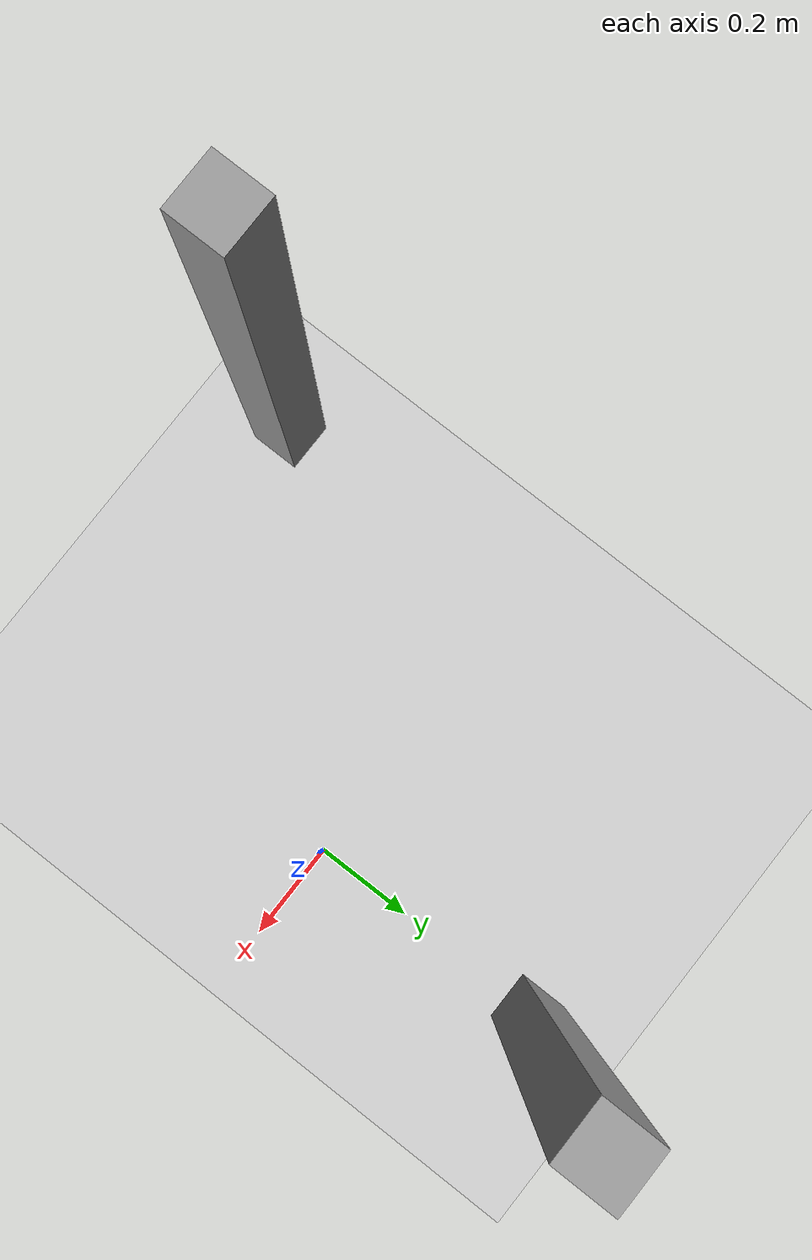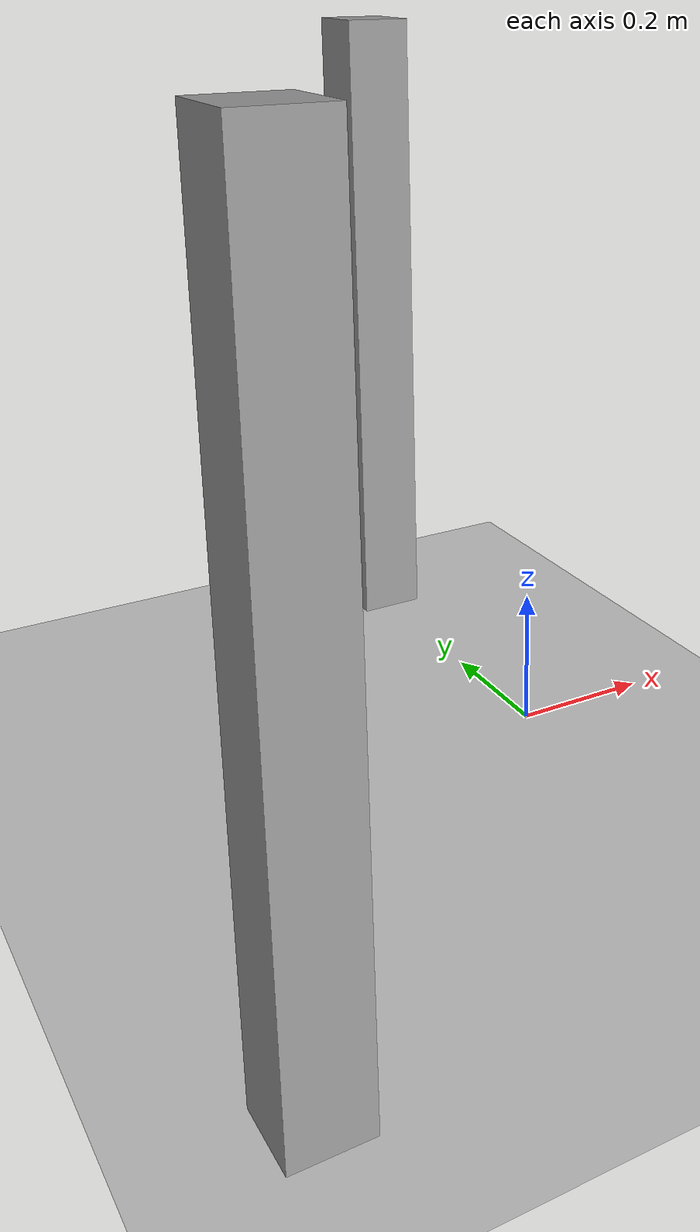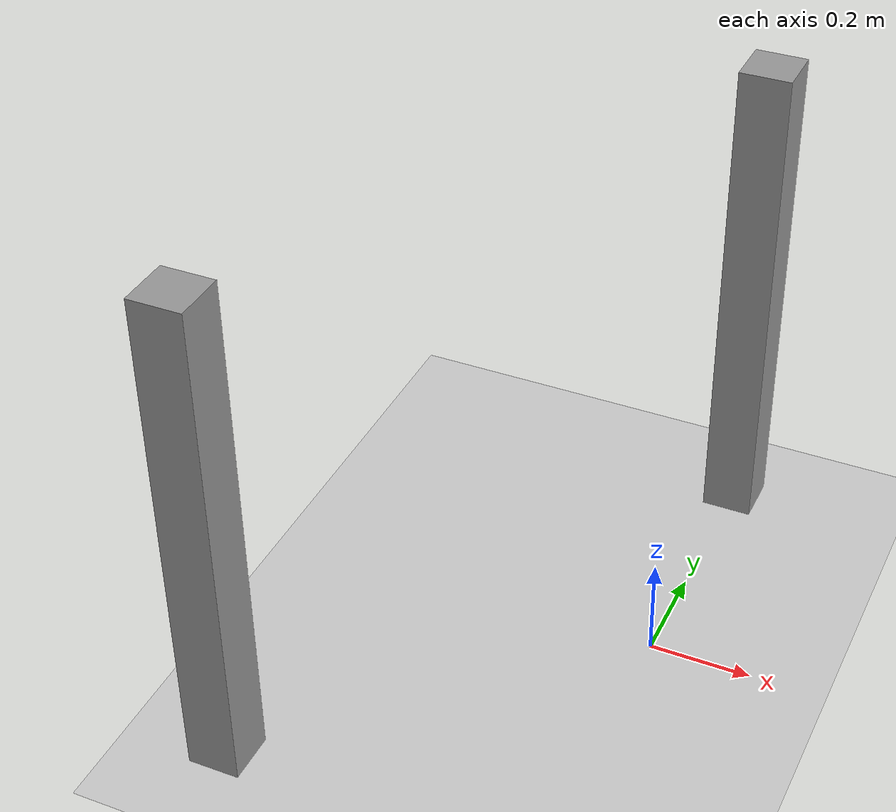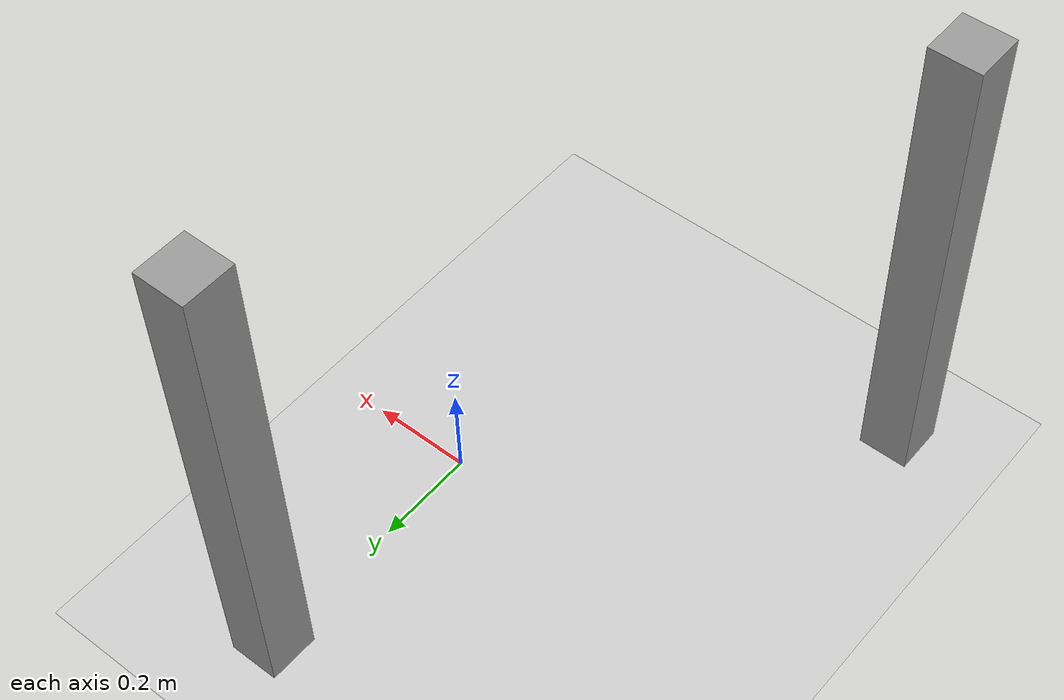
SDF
<sdf version="1.6">
 <world name="default">
  <light name="sun" type="directional">
   <pose>0 0 10 0 -0 0</pose>
   <diffuse>0.8 0.8 0.8 1</diffuse>
   <specular>0.1 0.1 0.1 1</specular>
   <attenuation>
    <range>1000</range>
    <constant>0.9</constant>
    <linear>0.01</linear>
    <quadratic>0.001</quadratic>
   </attenuation>
   <direction>-0.5 0.5 -1</direction>
  </light>
  <model name="ground_plane">
   <static>1</static>
   <link name="link">
    <collision name="collision">
     <geometry><plane><normal>0 0 1</normal><size>100 100</size></plane></geometry>
     <surface><friction><ode><mu>100</mu><mu2>50</mu2></ode></friction></surface>
    </collision>
    <visual name="visual">
     <cast_shadows>0</cast_shadows>
     <geometry><plane><normal>0 0 1</normal><size>100 100</size></plane></geometry>
     <material>
      <script><uri>file://media/materials/scripts/gazebo.material</uri><name>Gazebo/Grey</name></script>
     </material>
    </visual>
   </link>
  </model>
  <gravity>0 0 -9.8</gravity>
  <magnetic_field>6e-06 2.3e-05 -4.2e-05</magnetic_field>
  <atmosphere type="adiabatic"/>
  <physics name="default_physics" default="0" type="ode">
   <max_step_size>0.001</max_step_size>
   <real_time_factor>1</real_time_factor>
   <real_time_update_rate>1000</real_time_update_rate>
  </physics>
  <scene><ambient>0.4 0.4 0.4 1</ambient><background>0.7 0.7 0.7 1</background><shadows>1</shadows></scene>
  <spherical_coordinates>
   <surface_model>EARTH_WGS84</surface_model>
   <latitude_deg>0</latitude_deg>
   <longitude_deg>0</longitude_deg>
   <elevation>0</elevation>
   <heading_deg>0</heading_deg>
  </spherical_coordinates>
  <model name="box_experiment_3_clone">
   <link name="link">
    <inertial>
     <mass>1</mass>
     <inertia>
      <ixx>0.166667</ixx>
      <ixy>0</ixy>
      <ixz>0</ixz>
      <iyy>0.166667</iyy>
      <iyz>0</iyz>
      <izz>0.166667</izz>
     </inertia>
    </inertial>
    <visual name="visual">
     <geometry><box><size>0.1 0.1 1</size></box></geometry>
     <material>
      <script><name>Gazebo/Grey</name><uri>file://media/materials/scripts/gazebo.material</uri></script>
      <ambient>0.3 0.3 0.3 1</ambient>
      <diffuse>0.7 0.7 0.7 1</diffuse>
      <specular>0.01 0.01 0.01 1</specular>
      <emissive>0 0 0 1</emissive>
      <shader type="vertex"><normal_map>__default__</normal_map></shader>
     </material>
     <pose>0 0 0.5 0 -0 0</pose>
    </visual>
    <collision name="collision">
     <pose>0 0 0.5 0 -0 0</pose>
     <geometry><box><size>0.1 0.1 1</size></box></geometry>
     <surface>
      <friction>
       <ode><mu>1</mu><mu2>1</mu2><fdir1>0 0 0</fdir1><slip1>0</slip1><slip2>0</slip2></ode>
       <torsional>
        <coefficient>1</coefficient>
        <patch_radius>0</patch_radius>
        <surface_radius>0</surface_radius>
        <use_patch_radius>1</use_patch_radius>
        <ode><slip>0</slip></ode>
       </torsional>
      </friction>
      <bounce><restitution_coefficient>0</restitution_coefficient><threshold>1e+06</threshold></bounce>
      <contact>
       <collide_without_contact>0</collide_without_contact>
       <collide_without_contact_bitmask>1</collide_without_contact_bitmask>
       <collide_bitmask>1</collide_bitmask>
       <ode>
        <soft_cfm>0</soft_cfm>
        <soft_erp>0.2</soft_erp>
        <kp>1e+13</kp>
        <kd>1</kd>
        <max_vel>0.01</max_vel>
        <min_depth>0</min_depth>
       </ode>
       <bullet>
        <split_impulse>1</split_impulse>
        <split_impulse_penetration_threshold>-0.01</split_impulse_penetration_threshold>
        <soft_cfm>0</soft_cfm>
        <soft_erp>0.2</soft_erp>
        <kp>1e+13</kp>
        <kd>1</kd>
       </bullet>
      </contact>
     </surface>
    </collision>
   </link>
   <static>0</static>
   <pose>-0.604854 -0.564673 0 0 -0 0</pose>
  </model>
  <model name="box_experiment_3_clone_clone">
   <link name="link">
    <inertial>
     <mass>1</mass>
     <inertia>
      <ixx>0.166667</ixx>
      <ixy>0</ixy>
      <ixz>0</ixz>
      <iyy>0.166667</iyy>
      <iyz>0</iyz>
      <izz>0.166667</izz>
     </inertia>
    </inertial>
    <visual name="visual">
     <geometry><box><size>0.1 0.1 1</size></box></geometry>
     <material>
      <script><name>Gazebo/Grey</name><uri>file://media/materials/scripts/gazebo.material</uri></script>
      <ambient>0.3 0.3 0.3 1</ambient>
      <diffuse>0.7 0.7 0.7 1</diffuse>
      <specular>0.01 0.01 0.01 1</specular>
      <emissive>0 0 0 1</emissive>
      <shader type="vertex"><normal_map>__default__</normal_map></shader>
     </material>
     <pose>0 0 0.5 0 -0 0</pose>
    </visual>
    <collision name="collision">
     <pose>0 0 0.5 0 -0 0</pose>
     <geometry><box><size>0.1 0.1 1</size></box></geometry>
     <surface>
      <friction>
       <ode><mu>1</mu><mu2>1</mu2><fdir1>0 0 0</fdir1><slip1>0</slip1><slip2>0</slip2></ode>
       <torsional>
        <coefficient>1</coefficient>
        <patch_radius>0</patch_radius>
        <surface_radius>0</surface_radius>
        <use_patch_radius>1</use_patch_radius>
        <ode><slip>0</slip></ode>
       </torsional>
      </friction>
      <bounce><restitution_coefficient>0</restitution_coefficient><threshold>1e+06</threshold></bounce>
      <contact>
       <collide_without_contact>0</collide_without_contact>
       <collide_without_contact_bitmask>1</collide_without_contact_bitmask>
       <collide_bitmask>1</collide_bitmask>
       <ode>
        <soft_cfm>0</soft_cfm>
        <soft_erp>0.2</soft_erp>
        <kp>1e+13</kp>
        <kd>1</kd>
        <max_vel>0.01</max_vel>
        <min_depth>0</min_depth>
       </ode>
       <bullet>
        <split_impulse>1</split_impulse>
        <split_impulse_penetration_threshold>-0.01</split_impulse_penetration_threshold>
        <soft_cfm>0</soft_cfm>
        <soft_erp>0.2</soft_erp>
        <kp>1e+13</kp>
        <kd>1</kd>
       </bullet>
      </contact>
     </surface>
    </collision>
   </link>
   <static>0</static>
   <pose>0.0 0.5 0 0 -0 0</pose>
  </model>
  <plugin name="ros_interface_plugin" filename="librotors_gazebo_ros_interface_plugin.so"/>
  <spherical_coordinates>
   <surface_model>EARTH_WGS84</surface_model>
   <latitude_deg>47.3667</latitude_deg>
   <longitude_deg>8.5500</longitude_deg>
   <elevation>500.0</elevation>
   <heading_deg>0</heading_deg>
  </spherical_coordinates>
  <physics type="ode">
   <ode>
    <solver><type>quick</type><iters>1000</iters><sor>1.3</sor></solver>
    <constraints>
     <cfm>0</cfm>
     <erp>0.2</erp>
     <contact_max_correcting_vel>100</contact_max_correcting_vel>
     <contact_surface_layer>0.001</contact_surface_layer>
    </constraints>
   </ode>
   <max_step_size>0.01</max_step_size>
   <real_time_factor>1</real_time_factor>
   <real_time_update_rate>100</real_time_update_rate>
   <gravity>0 0 -9.8</gravity>
  </physics>
 </world>
</sdf>
